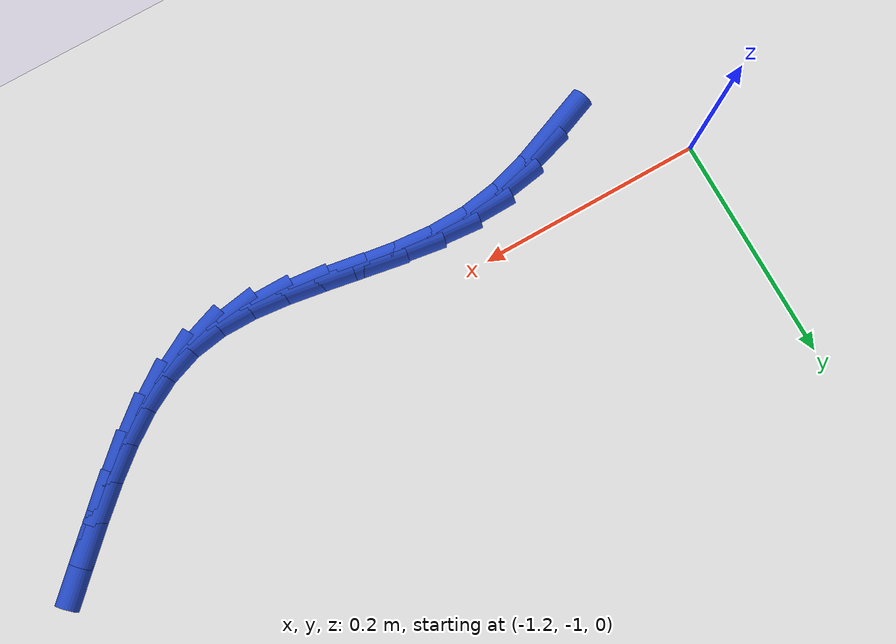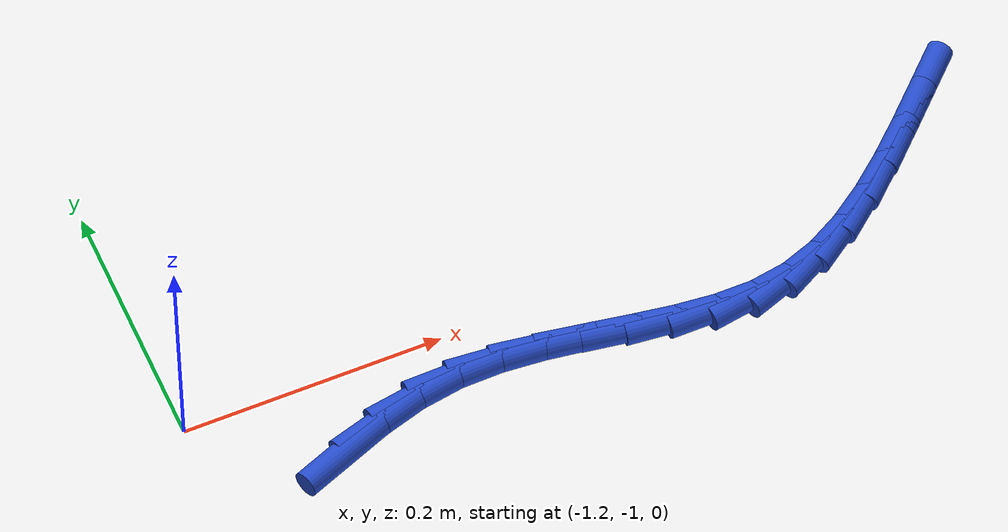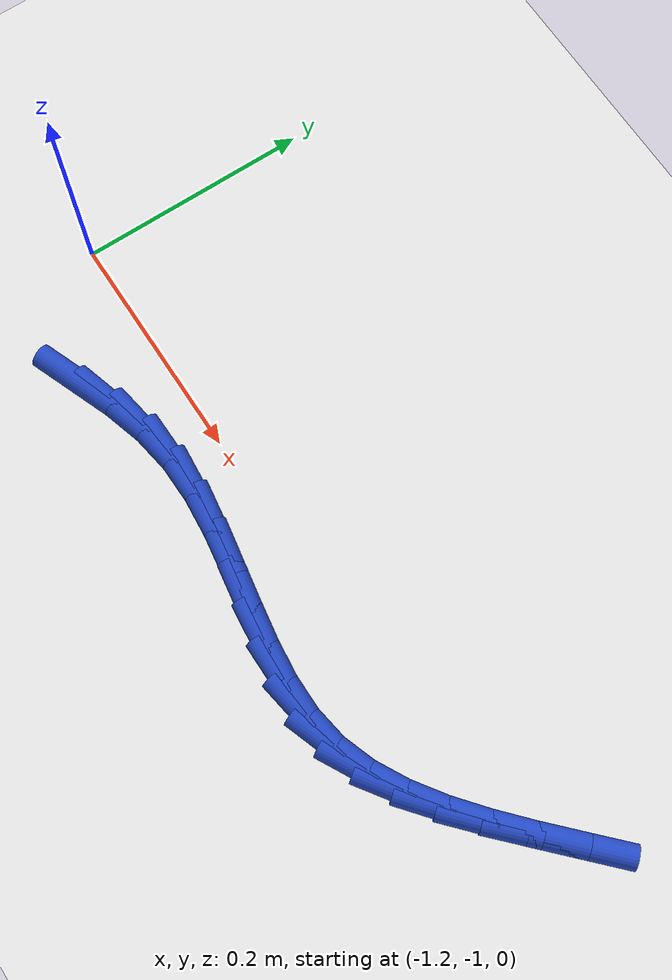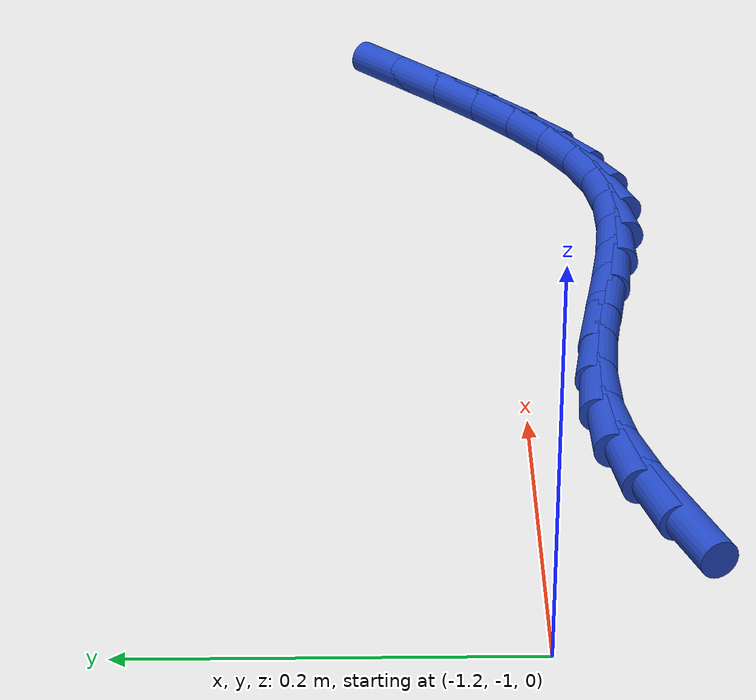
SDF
<sdf version="1.6">
 <world name="default">
  <model name="ground_plane">
   <static>1</static>
   <link name="link">
    <collision name="collision">
     <geometry><plane><normal>0 0 1</normal><size>100 100</size></plane></geometry>
     <surface><friction><ode><mu>100</mu><mu2>50</mu2></ode></friction></surface>
    </collision>
    <visual name="visual">
     <cast_shadows>0</cast_shadows>
     <geometry><plane><normal>0 0 1</normal><size>100 100</size></plane></geometry>
     <material>
      <script><uri>file://media/materials/scripts/gazebo.material</uri><name>Gazebo/WhiteGlow</name></script>
     </material>
    </visual>
   </link>
  </model>
  <model name="line">
   <link name="link_167">
    <pose>-1.102661204380512 -1.0673693027105229 0.01 0 1.57 0.3731642562309766</pose>
    <collision name="collision">
     <geometry><cylinder><radius>0.01</radius><length>0.08</length></cylinder></geometry>
    </collision>
    <visual name="visual">
     <material>
      <script><name>Gazebo/Blue</name><uri>file://media/materials/scripts/gazebo.material</uri></script>
     </material>
     <geometry><cylinder><radius>0.01</radius><length>0.08</length></cylinder></geometry>
    </visual>
   </link>
   <link name="link_168">
    <pose>-1.0701854946065332 -1.054654804895357 0.01 0 1.57 0.288649545953121</pose>
    <collision name="collision">
     <geometry><cylinder><radius>0.01</radius><length>0.08</length></cylinder></geometry>
    </collision>
    <visual name="visual">
     <material>
      <script><name>Gazebo/Blue</name><uri>file://media/materials/scripts/gazebo.material</uri></script>
     </material>
     <geometry><cylinder><radius>0.01</radius><length>0.08</length></cylinder></geometry>
    </visual>
   </link>
   <link name="link_169">
    <pose>-1.037315729932505 -1.044894369346013 0.01 0 1.57 0.1604909011677931</pose>
    <collision name="collision">
     <geometry><cylinder><radius>0.01</radius><length>0.08</length></cylinder></geometry>
    </collision>
    <visual name="visual">
     <material>
      <script><name>Gazebo/Blue</name><uri>file://media/materials/scripts/gazebo.material</uri></script>
     </material>
     <geometry><cylinder><radius>0.01</radius><length>0.08</length></cylinder></geometry>
    </visual>
   </link>
   <link name="link_170">
    <pose>-1.0041423579476478 -1.0395241581804762 0.01 0 1.57 0.019383470133546462</pose>
    <collision name="collision">
     <geometry><cylinder><radius>0.01</radius><length>0.08</length></cylinder></geometry>
    </collision>
    <visual name="visual">
     <material>
      <script><name>Gazebo/Blue</name><uri>file://media/materials/scripts/gazebo.material</uri></script>
     </material>
     <geometry><cylinder><radius>0.01</radius><length>0.08</length></cylinder></geometry>
    </visual>
   </link>
   <link name="link_171">
    <pose>-0.9707953908158959 -1.0388776972744755 0.01 0 1.57 -0.08501573894380565</pose>
    <collision name="collision">
     <geometry><cylinder><radius>0.01</radius><length>0.08</length></cylinder></geometry>
    </collision>
    <visual name="visual">
     <material>
      <script><name>Gazebo/Blue</name><uri>file://media/materials/scripts/gazebo.material</uri></script>
     </material>
     <geometry><cylinder><radius>0.01</radius><length>0.08</length></cylinder></geometry>
    </visual>
   </link>
   <link name="link_172">
    <pose>-0.9374611763845163 -1.041718477526152 0.01 0 1.57 -0.14894523949074084</pose>
    <collision name="collision">
     <geometry><cylinder><radius>0.01</radius><length>0.08</length></cylinder></geometry>
    </collision>
    <visual name="visual">
     <material>
      <script><name>Gazebo/Blue</name><uri>file://media/materials/scripts/gazebo.material</uri></script>
     </material>
     <geometry><cylinder><radius>0.01</radius><length>0.08</length></cylinder></geometry>
    </visual>
   </link>
   <link name="link_173">
    <pose>-0.9043303689663252 -1.046689971736042 0.01 0 1.57 -0.17374208877053604</pose>
    <collision name="collision">
     <geometry><cylinder><radius>0.01</radius><length>0.08</length></cylinder></geometry>
    </collision>
    <visual name="visual">
     <material>
      <script><name>Gazebo/Blue</name><uri>file://media/materials/scripts/gazebo.material</uri></script>
     </material>
     <geometry><cylinder><radius>0.01</radius><length>0.08</length></cylinder></geometry>
    </visual>
   </link>
   <link name="link_174">
    <pose>-0.8715936228741413 -1.0524356527046812 0.01 0 1.57 -0.15923187563092767</pose>
    <collision name="collision">
     <geometry><cylinder><radius>0.01</radius><length>0.08</length></cylinder></geometry>
    </collision>
    <visual name="visual">
     <material>
      <script><name>Gazebo/Blue</name><uri>file://media/materials/scripts/gazebo.material</uri></script>
     </material>
     <geometry><cylinder><radius>0.01</radius><length>0.08</length></cylinder></geometry>
    </visual>
   </link>
   <link name="link_175">
    <pose>-0.8394415924207808 -1.0575989932326053 0.01 0 1.57 -0.10240710876424791</pose>
    <collision name="collision">
     <geometry><cylinder><radius>0.01</radius><length>0.08</length></cylinder></geometry>
    </collision>
    <visual name="visual">
     <material>
      <script><name>Gazebo/Blue</name><uri>file://media/materials/scripts/gazebo.material</uri></script>
     </material>
     <geometry><cylinder><radius>0.01</radius><length>0.08</length></cylinder></geometry>
    </visual>
   </link>
   <link name="link_176">
    <pose>-0.8080649319190595 -1.06082346612035 0.01 0 1.57 0.0023321387545720378</pose>
    <collision name="collision">
     <geometry><cylinder><radius>0.01</radius><length>0.08</length></cylinder></geometry>
    </collision>
    <visual name="visual">
     <material>
      <script><name>Gazebo/Blue</name><uri>file://media/materials/scripts/gazebo.material</uri></script>
     </material>
     <geometry><cylinder><radius>0.01</radius><length>0.08</length></cylinder></geometry>
    </visual>
   </link>
   <link name="link_177">
    <pose>-0.777654295681795 -1.0607525441684513 0.01 0 1.57 0.15984365879035636</pose>
    <collision name="collision">
     <geometry><cylinder><radius>0.01</radius><length>0.08</length></cylinder></geometry>
    </collision>
    <visual name="visual">
     <material>
      <script><name>Gazebo/Blue</name><uri>file://media/materials/scripts/gazebo.material</uri></script>
     </material>
     <geometry><cylinder><radius>0.01</radius><length>0.08</length></cylinder></geometry>
    </visual>
   </link>
   <link name="link_178">
    <pose>-0.7483991935768145 -1.0560360643430984 0.01 0 1.57 0.3424474459429248</pose>
    <collision name="collision">
     <geometry><cylinder><radius>0.01</radius><length>0.08</length></cylinder></geometry>
    </collision>
    <visual name="visual">
     <material>
      <script><name>Gazebo/Blue</name><uri>file://media/materials/scripts/gazebo.material</uri></script>
     </material>
     <geometry><cylinder><radius>0.01</radius><length>0.08</length></cylinder></geometry>
    </visual>
   </link>
   <link name="link_179">
    <pose>-0.7203602849836905 -1.0460403907130573 0.01 0 1.57 0.4940108643841899</pose>
    <collision name="collision">
     <geometry><cylinder><radius>0.01</radius><length>0.08</length></cylinder></geometry>
    </collision>
    <visual name="visual">
     <material>
      <script><name>Gazebo/Blue</name><uri>file://media/materials/scripts/gazebo.material</uri></script>
     </material>
     <geometry><cylinder><radius>0.01</radius><length>0.08</length></cylinder></geometry>
    </visual>
   </link>
   <link name="link_180">
    <pose>-0.6933530003509016 -1.0314955855203767 0.01 0 1.57 0.6076341214361827</pose>
    <collision name="collision">
     <geometry><cylinder><radius>0.01</radius><length>0.08</length></cylinder></geometry>
    </collision>
    <visual name="visual">
     <material>
      <script><name>Gazebo/Blue</name><uri>file://media/materials/scripts/gazebo.material</uri></script>
     </material>
     <geometry><cylinder><radius>0.01</radius><length>0.08</length></cylinder></geometry>
    </visual>
   </link>
   <link name="link_181">
    <pose>-0.6671652827908754 -1.013284565850934 0.01 0 1.57 0.6872510362426074</pose>
    <collision name="collision">
     <geometry><cylinder><radius>0.01</radius><length>0.08</length></cylinder></geometry>
    </collision>
    <visual name="visual">
     <material>
      <script><name>Gazebo/Blue</name><uri>file://media/materials/scripts/gazebo.material</uri></script>
     </material>
     <geometry><cylinder><radius>0.01</radius><length>0.08</length></cylinder></geometry>
    </visual>
   </link>
   <link name="link_182">
    <pose>-0.6415850754160375 -0.9922902487906042 0.01 0 1.57 0.7378034593418566</pose>
    <collision name="collision">
     <geometry><cylinder><radius>0.01</radius><length>0.08</length></cylinder></geometry>
    </collision>
    <visual name="visual">
     <material>
      <script><name>Gazebo/Blue</name><uri>file://media/materials/scripts/gazebo.material</uri></script>
     </material>
     <geometry><cylinder><radius>0.01</radius><length>0.08</length></cylinder></geometry>
    </visual>
   </link>
   <link name="link_183">
    <pose>-0.6164003213388163 -0.9693955514252645 0.01 0 1.57 0.7631340297376701</pose>
    <collision name="collision">
     <geometry><cylinder><radius>0.01</radius><length>0.08</length></cylinder></geometry>
    </collision>
    <visual name="visual">
     <material>
      <script><name>Gazebo/Blue</name><uri>file://media/materials/scripts/gazebo.material</uri></script>
     </material>
     <geometry><cylinder><radius>0.01</radius><length>0.08</length></cylinder></geometry>
    </visual>
   </link>
   <link name="link_184">
    <pose>-0.591398963671638 -0.9454833908407907 0.01 0 1.57 0.7653646367492766</pose>
    <collision name="collision">
     <geometry><cylinder><radius>0.01</radius><length>0.08</length></cylinder></geometry>
    </collision>
    <visual name="visual">
     <material>
      <script><name>Gazebo/Blue</name><uri>file://media/materials/scripts/gazebo.material</uri></script>
     </material>
     <geometry><cylinder><radius>0.01</radius><length>0.08</length></cylinder></geometry>
    </visual>
   </link>
  </model>
 </world>
</sdf>
